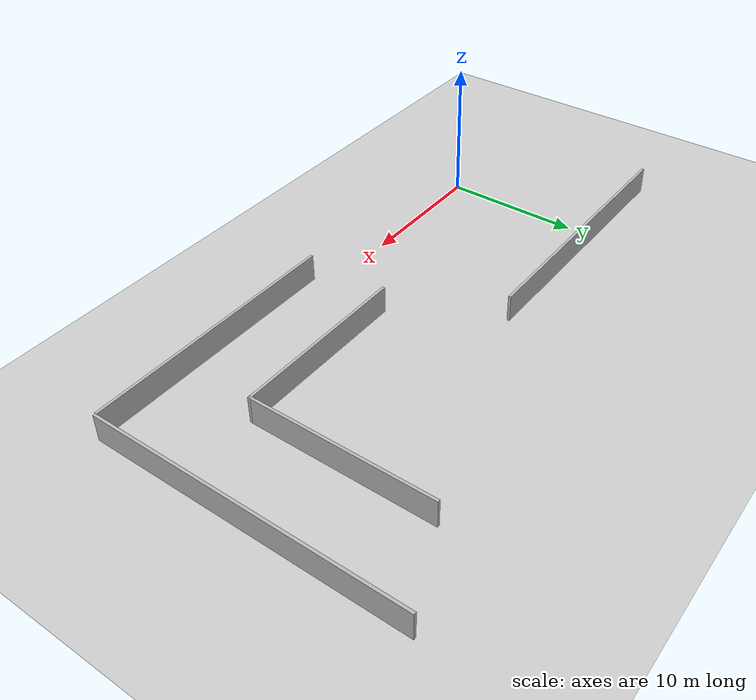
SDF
<sdf version="1.6">
 <world name="default">
  <physics name="fleet_physics" type="ode">
   <max_step_size>0.004</max_step_size>
   <real_time_update_rate>250</real_time_update_rate>
   <real_time_factor>1.0</real_time_factor>
  </physics>
  <plugin name="gazebo_ros_state" filename="libgazebo_ros_state.so">
   <ros><namespace>/gazebo</namespace></ros>
   <update_rate>60</update_rate>
  </plugin>
  <gravity>0 0 -9.8</gravity>
  <model name="ground_plane">
   <static>1</static>
   <link name="link">
    <collision name="collision">
     <geometry><plane><normal>0 0 1</normal><size>100 100</size></plane></geometry>
     <surface>
      <contact><collide_bitmask>65535</collide_bitmask></contact>
      <friction><ode><mu>100</mu><mu2>50</mu2></ode></friction>
     </surface>
    </collision>
    <visual name="visual">
     <cast_shadows>0</cast_shadows>
     <geometry><plane><normal>0 0 1</normal><size>100 100</size></plane></geometry>
    </visual>
   </link>
  </model>
  <include><uri>model://sun</uri></include>
  <model name="formation_corridor_south">
   <static>true</static>
   <pose>25.5 -1.5 1 0 0 0</pose>
   <link name="wall">
    <collision name="box"><geometry><box><size>19.0 0.2 2</size></box></geometry></collision>
    <visual name="box"><geometry><box><size>19.0 0.2 2</size></box></geometry></visual>
   </link>
  </model>
  <model name="formation_corridor_north">
   <static>true</static>
   <pose>22.5 4.7 1 0 0 0</pose>
   <link name="wall">
    <collision name="box"><geometry><box><size>13.0 0.2 2</size></box></geometry></collision>
    <visual name="box"><geometry><box><size>13.0 0.2 2</size></box></geometry></visual>
   </link>
  </model>
  <model name="formation_corridor_east">
   <static>true</static>
   <pose>35.1 9.7 1 0 0 0</pose>
   <link name="wall">
    <collision name="box"><geometry><box><size>0.2 22.4 2</size></box></geometry></collision>
    <visual name="box"><geometry><box><size>0.2 22.4 2</size></box></geometry></visual>
   </link>
  </model>
  <model name="formation_corridor_west">
   <static>true</static>
   <pose>28.9 11.3 1 0 0 0</pose>
   <link name="wall">
    <collision name="box"><geometry><box><size>0.2 13.4 2</size></box></geometry></collision>
    <visual name="box"><geometry><box><size>0.2 13.4 2</size></box></geometry></visual>
   </link>
  </model>
  <model name="formation_workspace_wall">
   <static>true</static>
   <pose>2.0 12.0 1 0 0 0</pose>
   <link name="wall">
    <collision name="box"><geometry><box><size>20.0 0.2 2</size></box></geometry></collision>
    <visual name="box"><geometry><box><size>20.0 0.2 2</size></box></geometry></visual>
   </link>
  </model>
 </world>
</sdf>
